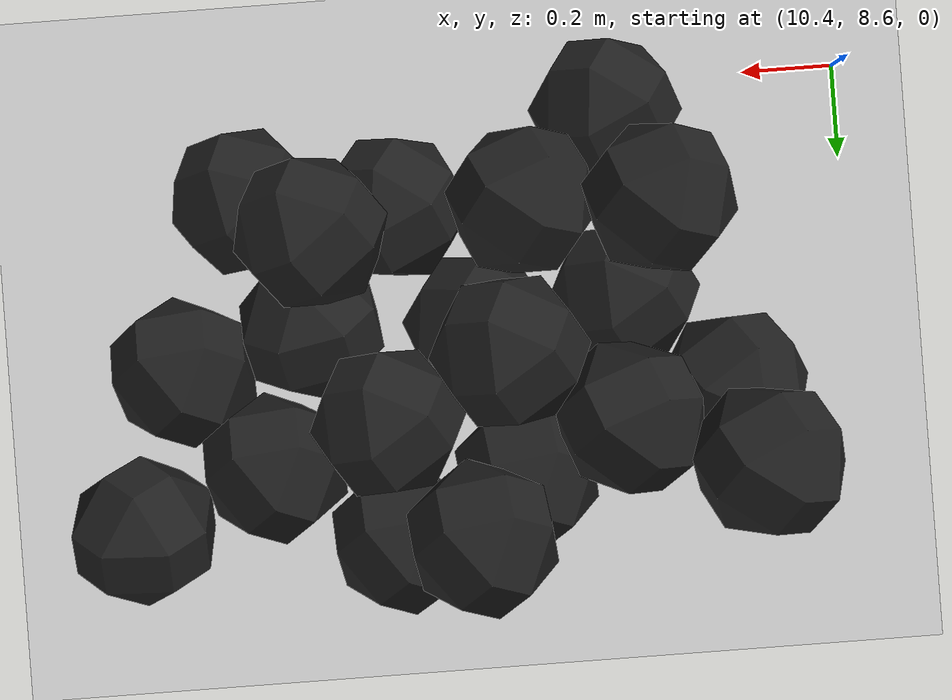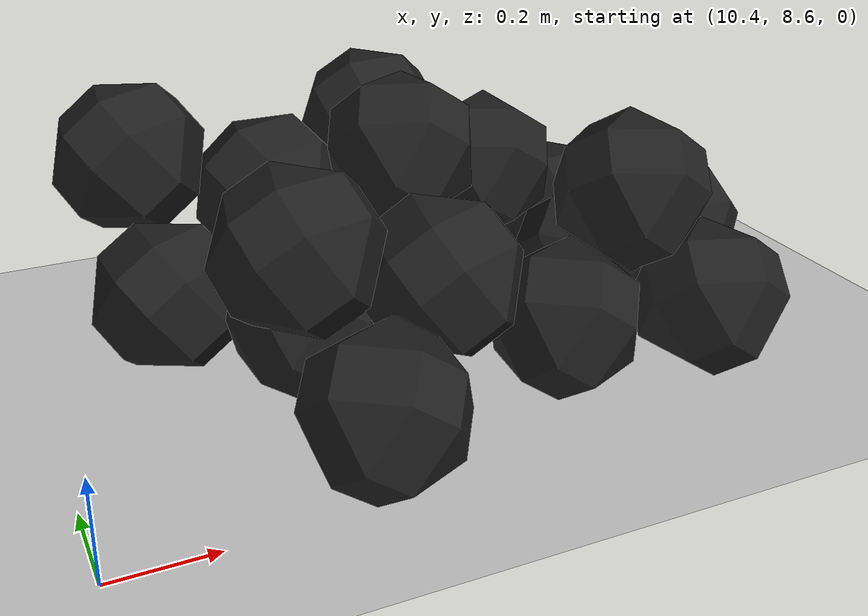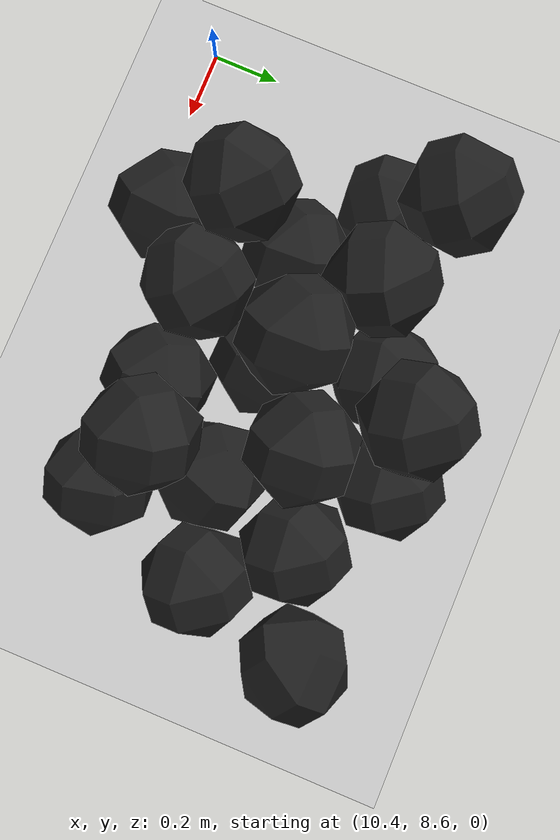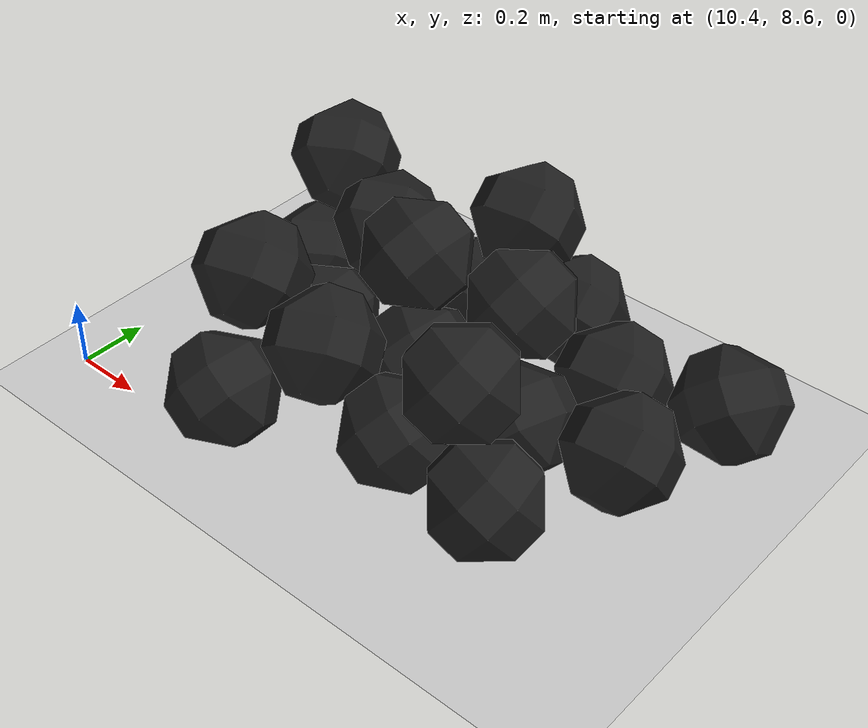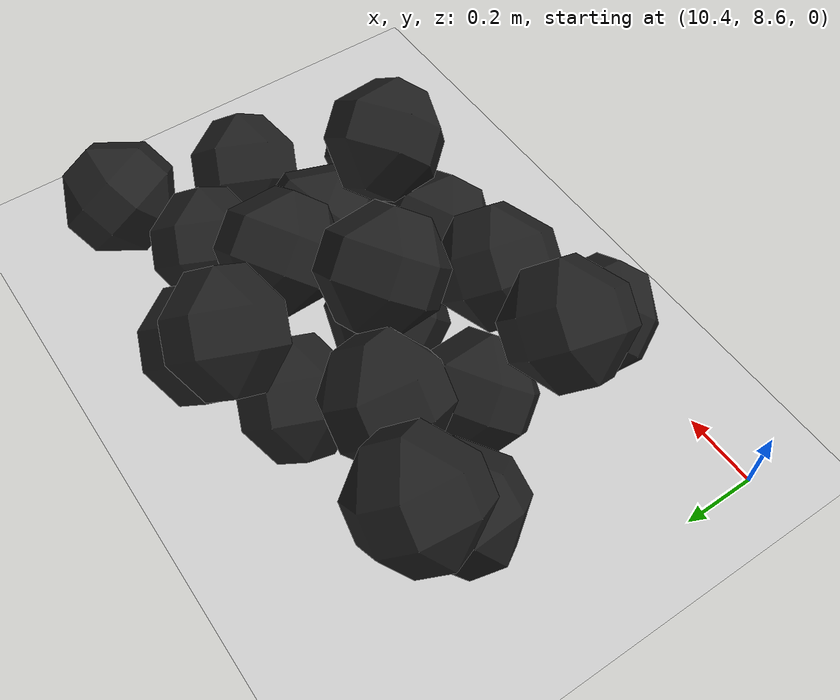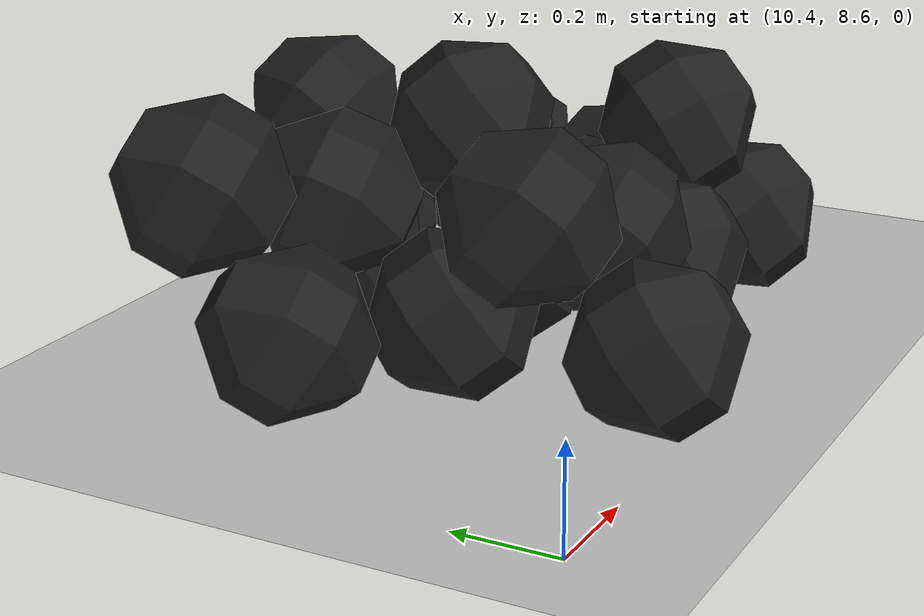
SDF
<sdf version="1.7">
 <world name="default">
  <model name="ground_plane">
   <static>1</static>
   <link name="link">
    <collision name="collision">
     <geometry><plane><normal>0 0 1</normal><size>100 100</size></plane></geometry>
     <surface><friction><ode><mu>100</mu><mu2>50</mu2></ode></friction></surface>
    </collision>
    <visual name="visual">
     <cast_shadows>0</cast_shadows>
     <geometry><plane><normal>0 0 1</normal><size>100 100</size></plane></geometry>
     <material>
      <script><uri>file://media/materials/scripts/gazebo.material</uri><name>Gazebo/Grey</name></script>
     </material>
    </visual>
   </link>
  </model>
  <model name="haoduomiantiaa_0">
   <link name="link_0">
    <inertial>
     <mass>0.2</mass>
     <inertia>
      <ixx>0.166667</ixx>
      <ixy>0</ixy>
      <ixz>0</ixz>
      <iyy>0.166667</iyy>
      <iyz>0</iyz>
      <izz>0.166667</izz>
     </inertia>
    </inertial>
    <visual name="visual">
     <geometry>
      <mesh>
       <uri>/home/lihaoyang/catkin_ws/src/pudong_gazebo/world/stl/haoduomianti.stl</uri>
       <scale>1 1 1</scale>
      </mesh>
     </geometry>
     <material>
      <lighting>1</lighting>
      <script><uri>file://media/materials/scripts/gazebo.material</uri><name>Gazebo/Black</name></script>
      <shader type="pixel"><normal_map>__default__</normal_map></shader>
      <ambient>0.3 0.3 0.3 1</ambient>
      <diffuse>0.7 0.7 0.7 1</diffuse>
      <specular>0.01 0.01 0.01 1</specular>
      <emissive>0 0 0 1</emissive>
     </material>
    </visual>
    <collision name="collision">
     <geometry>
      <mesh>
       <uri>/home/lihaoyang/catkin_ws/src/pudong_gazebo/world/stl/haoduomianti.stl</uri>
       <scale>1 1 1</scale>
      </mesh>
     </geometry>
     <surface>
      <friction>
       <ode><mu>1</mu><mu2>1</mu2><fdir1>0 0 0</fdir1><slip1>0</slip1><slip2>0</slip2></ode>
       <torsional>
        <coefficient>1</coefficient>
        <patch_radius>0</patch_radius>
        <surface_radius>0</surface_radius>
        <use_patch_radius>1</use_patch_radius>
        <ode><slip>0</slip></ode>
       </torsional>
      </friction>
      <bounce><restitution_coefficient>0</restitution_coefficient><threshold>1e+06</threshold></bounce>
      <contact>
       <collide_without_contact>0</collide_without_contact>
       <collide_without_contact_bitmask>1</collide_without_contact_bitmask>
       <collide_bitmask>1</collide_bitmask>
       <ode>
        <soft_cfm>0</soft_cfm>
        <soft_erp>0.2</soft_erp>
        <kp>1e+13</kp>
        <kd>1</kd>
        <max_vel>0.01</max_vel>
        <min_depth>0</min_depth>
       </ode>
       <bullet>
        <split_impulse>1</split_impulse>
        <split_impulse_penetration_threshold>-0.01</split_impulse_penetration_threshold>
        <soft_cfm>0</soft_cfm>
        <soft_erp>0.2</soft_erp>
        <kp>1e+13</kp>
        <kd>1</kd>
       </bullet>
      </contact>
     </surface>
    </collision>
   </link>
   <static>0</static>
   <pose>10.9075 9.06867 -0.115591 0.785364 -0.615479 -1.00385</pose>
  </model>
  <model name="haoduomiantiaa_2">
   <link name="link_0">
    <inertial>
     <mass>0.2</mass>
     <inertia>
      <ixx>0.166667</ixx>
      <ixy>0</ixy>
      <ixz>0</ixz>
      <iyy>0.166667</iyy>
      <iyz>0</iyz>
      <izz>0.166667</izz>
     </inertia>
    </inertial>
    <visual name="visual">
     <geometry>
      <mesh>
       <uri>/home/lihaoyang/catkin_ws/src/pudong_gazebo/world/stl/haoduomianti.stl</uri>
       <scale>1 1 1</scale>
      </mesh>
     </geometry>
     <material>
      <lighting>1</lighting>
      <script><uri>file://media/materials/scripts/gazebo.material</uri><name>Gazebo/Black</name></script>
      <shader type="pixel"><normal_map>__default__</normal_map></shader>
      <ambient>0.3 0.3 0.3 1</ambient>
      <diffuse>0.7 0.7 0.7 1</diffuse>
      <specular>0.01 0.01 0.01 1</specular>
      <emissive>0 0 0 1</emissive>
     </material>
    </visual>
    <collision name="collision">
     <geometry>
      <mesh>
       <uri>/home/lihaoyang/catkin_ws/src/pudong_gazebo/world/stl/haoduomianti.stl</uri>
       <scale>1 1 1</scale>
      </mesh>
     </geometry>
     <surface>
      <friction>
       <ode><mu>1</mu><mu2>1</mu2><fdir1>0 0 0</fdir1><slip1>0</slip1><slip2>0</slip2></ode>
       <torsional>
        <coefficient>1</coefficient>
        <patch_radius>0</patch_radius>
        <surface_radius>0</surface_radius>
        <use_patch_radius>1</use_patch_radius>
        <ode><slip>0</slip></ode>
       </torsional>
      </friction>
      <bounce><restitution_coefficient>0</restitution_coefficient><threshold>1e+06</threshold></bounce>
      <contact>
       <collide_without_contact>0</collide_without_contact>
       <collide_without_contact_bitmask>1</collide_without_contact_bitmask>
       <collide_bitmask>1</collide_bitmask>
       <ode>
        <soft_cfm>0</soft_cfm>
        <soft_erp>0.2</soft_erp>
        <kp>1e+13</kp>
        <kd>1</kd>
        <max_vel>0.01</max_vel>
        <min_depth>0</min_depth>
       </ode>
       <bullet>
        <split_impulse>1</split_impulse>
        <split_impulse_penetration_threshold>-0.01</split_impulse_penetration_threshold>
        <soft_cfm>0</soft_cfm>
        <soft_erp>0.2</soft_erp>
        <kp>1e+13</kp>
        <kd>1</kd>
       </bullet>
      </contact>
     </surface>
    </collision>
   </link>
   <static>0</static>
   <pose>11.5784 9.08907 -0.115479 0.785418 -0.615485 0.70657</pose>
  </model>
  <model name="haoduomiantiaa_5">
   <link name="link_0">
    <inertial>
     <mass>0.2</mass>
     <inertia>
      <ixx>0.166667</ixx>
      <ixy>0</ixy>
      <ixz>0</ixz>
      <iyy>0.166667</iyy>
      <iyz>0</iyz>
      <izz>0.166667</izz>
     </inertia>
    </inertial>
    <visual name="visual">
     <geometry>
      <mesh>
       <uri>/home/lihaoyang/catkin_ws/src/pudong_gazebo/world/stl/haoduomianti.stl</uri>
       <scale>1 1 1</scale>
      </mesh>
     </geometry>
     <material>
      <lighting>1</lighting>
      <script><uri>file://media/materials/scripts/gazebo.material</uri><name>Gazebo/Black</name></script>
      <shader type="pixel"><normal_map>__default__</normal_map></shader>
      <ambient>0.3 0.3 0.3 1</ambient>
      <diffuse>0.7 0.7 0.7 1</diffuse>
      <specular>0.01 0.01 0.01 1</specular>
      <emissive>0 0 0 1</emissive>
     </material>
    </visual>
    <collision name="collision">
     <geometry>
      <mesh>
       <uri>/home/lihaoyang/catkin_ws/src/pudong_gazebo/world/stl/haoduomianti.stl</uri>
       <scale>1 1 1</scale>
      </mesh>
     </geometry>
     <surface>
      <friction>
       <ode><mu>1</mu><mu2>1</mu2><fdir1>0 0 0</fdir1><slip1>0</slip1><slip2>0</slip2></ode>
       <torsional>
        <coefficient>1</coefficient>
        <patch_radius>0</patch_radius>
        <surface_radius>0</surface_radius>
        <use_patch_radius>1</use_patch_radius>
        <ode><slip>0</slip></ode>
       </torsional>
      </friction>
      <bounce><restitution_coefficient>0</restitution_coefficient><threshold>1e+06</threshold></bounce>
      <contact>
       <collide_without_contact>0</collide_without_contact>
       <collide_without_contact_bitmask>1</collide_without_contact_bitmask>
       <collide_bitmask>1</collide_bitmask>
       <ode>
        <soft_cfm>0</soft_cfm>
        <soft_erp>0.2</soft_erp>
        <kp>1e+13</kp>
        <kd>1</kd>
        <max_vel>0.01</max_vel>
        <min_depth>0</min_depth>
       </ode>
       <bullet>
        <split_impulse>1</split_impulse>
        <split_impulse_penetration_threshold>-0.01</split_impulse_penetration_threshold>
        <soft_cfm>0</soft_cfm>
        <soft_erp>0.2</soft_erp>
        <kp>1e+13</kp>
        <kd>1</kd>
       </bullet>
      </contact>
     </surface>
    </collision>
   </link>
   <static>0</static>
   <pose>11.5484 8.92081 0.116917 0.686953 -0.610599 -2.93693</pose>
  </model>
  <model name="haoduomiantiaa_7">
   <link name="link_0">
    <inertial>
     <mass>0.2</mass>
     <inertia>
      <ixx>0.166667</ixx>
      <ixy>0</ixy>
      <ixz>0</ixz>
      <iyy>0.166667</iyy>
      <iyz>0</iyz>
      <izz>0.166667</izz>
     </inertia>
    </inertial>
    <visual name="visual">
     <geometry>
      <mesh>
       <uri>/home/lihaoyang/catkin_ws/src/pudong_gazebo/world/stl/haoduomianti.stl</uri>
       <scale>1 1 1</scale>
      </mesh>
     </geometry>
     <material>
      <lighting>1</lighting>
      <script><uri>file://media/materials/scripts/gazebo.material</uri><name>Gazebo/Black</name></script>
      <shader type="pixel"><normal_map>__default__</normal_map></shader>
      <ambient>0.3 0.3 0.3 1</ambient>
      <diffuse>0.7 0.7 0.7 1</diffuse>
      <specular>0.01 0.01 0.01 1</specular>
      <emissive>0 0 0 1</emissive>
     </material>
    </visual>
    <collision name="collision">
     <geometry>
      <mesh>
       <uri>/home/lihaoyang/catkin_ws/src/pudong_gazebo/world/stl/haoduomianti.stl</uri>
       <scale>1 1 1</scale>
      </mesh>
     </geometry>
     <surface>
      <friction>
       <ode><mu>1</mu><mu2>1</mu2><fdir1>0 0 0</fdir1><slip1>0</slip1><slip2>0</slip2></ode>
       <torsional>
        <coefficient>1</coefficient>
        <patch_radius>0</patch_radius>
        <surface_radius>0</surface_radius>
        <use_patch_radius>1</use_patch_radius>
        <ode><slip>0</slip></ode>
       </torsional>
      </friction>
      <bounce><restitution_coefficient>0</restitution_coefficient><threshold>1e+06</threshold></bounce>
      <contact>
       <collide_without_contact>0</collide_without_contact>
       <collide_without_contact_bitmask>1</collide_without_contact_bitmask>
       <collide_bitmask>1</collide_bitmask>
       <ode>
        <soft_cfm>0</soft_cfm>
        <soft_erp>0.2</soft_erp>
        <kp>1e+13</kp>
        <kd>1</kd>
        <max_vel>0.01</max_vel>
        <min_depth>0</min_depth>
       </ode>
       <bullet>
        <split_impulse>1</split_impulse>
        <split_impulse_penetration_threshold>-0.01</split_impulse_penetration_threshold>
        <soft_cfm>0</soft_cfm>
        <soft_erp>0.2</soft_erp>
        <kp>1e+13</kp>
        <kd>1</kd>
       </bullet>
      </contact>
     </surface>
    </collision>
   </link>
   <static>0</static>
   <pose>10.9183 8.67319 -0.115516 0.785399 -0.615423 -1.12919</pose>
  </model>
  <model name="haoduomiantiaa_16">
   <link name="link_0">
    <inertial>
     <mass>0.2</mass>
     <inertia>
      <ixx>0.166667</ixx>
      <ixy>0</ixy>
      <ixz>0</ixz>
      <iyy>0.166667</iyy>
      <iyz>0</iyz>
      <izz>0.166667</izz>
     </inertia>
    </inertial>
    <visual name="visual">
     <geometry>
      <mesh>
       <uri>/home/lihaoyang/catkin_ws/src/pudong_gazebo/world/stl/haoduomianti.stl</uri>
       <scale>1 1 1</scale>
      </mesh>
     </geometry>
     <material>
      <lighting>1</lighting>
      <script><uri>file://media/materials/scripts/gazebo.material</uri><name>Gazebo/Black</name></script>
      <shader type="pixel"><normal_map>__default__</normal_map></shader>
      <ambient>0.3 0.3 0.3 1</ambient>
      <diffuse>0.7 0.7 0.7 1</diffuse>
      <specular>0.01 0.01 0.01 1</specular>
      <emissive>0 0 0 1</emissive>
     </material>
    </visual>
    <collision name="collision">
     <geometry>
      <mesh>
       <uri>/home/lihaoyang/catkin_ws/src/pudong_gazebo/world/stl/haoduomianti.stl</uri>
       <scale>1 1 1</scale>
      </mesh>
     </geometry>
     <surface>
      <friction>
       <ode><mu>1</mu><mu2>1</mu2><fdir1>0 0 0</fdir1><slip1>0</slip1><slip2>0</slip2></ode>
       <torsional>
        <coefficient>1</coefficient>
        <patch_radius>0</patch_radius>
        <surface_radius>0</surface_radius>
        <use_patch_radius>1</use_patch_radius>
        <ode><slip>0</slip></ode>
       </torsional>
      </friction>
      <bounce><restitution_coefficient>0</restitution_coefficient><threshold>1e+06</threshold></bounce>
      <contact>
       <collide_without_contact>0</collide_without_contact>
       <collide_without_contact_bitmask>1</collide_without_contact_bitmask>
       <collide_bitmask>1</collide_bitmask>
       <ode>
        <soft_cfm>0</soft_cfm>
        <soft_erp>0.2</soft_erp>
        <kp>1e+13</kp>
        <kd>1</kd>
        <max_vel>0.01</max_vel>
        <min_depth>0</min_depth>
       </ode>
       <bullet>
        <split_impulse>1</split_impulse>
        <split_impulse_penetration_threshold>-0.01</split_impulse_penetration_threshold>
        <soft_cfm>0</soft_cfm>
        <soft_erp>0.2</soft_erp>
        <kp>1e+13</kp>
        <kd>1</kd>
       </bullet>
      </contact>
     </surface>
    </collision>
   </link>
   <static>0</static>
   <pose>11.433 9.31202 0.061931 0.77388 -0.677487 1.11241</pose>
  </model>
  <model name="haoduomiantiaa_21">
   <link name="link_0">
    <inertial>
     <mass>0.2</mass>
     <inertia>
      <ixx>0.166667</ixx>
      <ixy>0</ixy>
      <ixz>0</ixz>
      <iyy>0.166667</iyy>
      <iyz>0</iyz>
      <izz>0.166667</izz>
     </inertia>
    </inertial>
    <visual name="visual">
     <geometry>
      <mesh>
       <uri>/home/lihaoyang/catkin_ws/src/pudong_gazebo/world/stl/haoduomianti.stl</uri>
       <scale>1 1 1</scale>
      </mesh>
     </geometry>
     <material>
      <lighting>1</lighting>
      <script><uri>file://media/materials/scripts/gazebo.material</uri><name>Gazebo/Black</name></script>
      <shader type="pixel"><normal_map>__default__</normal_map></shader>
      <ambient>0.3 0.3 0.3 1</ambient>
      <diffuse>0.7 0.7 0.7 1</diffuse>
      <specular>0.01 0.01 0.01 1</specular>
      <emissive>0 0 0 1</emissive>
     </material>
    </visual>
    <collision name="collision">
     <geometry>
      <mesh>
       <uri>/home/lihaoyang/catkin_ws/src/pudong_gazebo/world/stl/haoduomianti.stl</uri>
       <scale>1 1 1</scale>
      </mesh>
     </geometry>
     <surface>
      <friction>
       <ode><mu>1</mu><mu2>1</mu2><fdir1>0 0 0</fdir1><slip1>0</slip1><slip2>0</slip2></ode>
       <torsional>
        <coefficient>1</coefficient>
        <patch_radius>0</patch_radius>
        <surface_radius>0</surface_radius>
        <use_patch_radius>1</use_patch_radius>
        <ode><slip>0</slip></ode>
       </torsional>
      </friction>
      <bounce><restitution_coefficient>0</restitution_coefficient><threshold>1e+06</threshold></bounce>
      <contact>
       <collide_without_contact>0</collide_without_contact>
       <collide_without_contact_bitmask>1</collide_without_contact_bitmask>
       <collide_bitmask>1</collide_bitmask>
       <ode>
        <soft_cfm>0</soft_cfm>
        <soft_erp>0.2</soft_erp>
        <kp>1e+13</kp>
        <kd>1</kd>
        <max_vel>0.01</max_vel>
        <min_depth>0</min_depth>
       </ode>
       <bullet>
        <split_impulse>1</split_impulse>
        <split_impulse_penetration_threshold>-0.01</split_impulse_penetration_threshold>
        <soft_cfm>0</soft_cfm>
        <soft_erp>0.2</soft_erp>
        <kp>1e+13</kp>
        <kd>1</kd>
       </bullet>
      </contact>
     </surface>
    </collision>
   </link>
   <static>0</static>
   <pose>10.9536 9.27498 0.075313 1.05219 -0.670837 -2.44192</pose>
  </model>
  <model name="haoduomiantiaa_22">
   <link name="link_0">
    <inertial>
     <mass>0.2</mass>
     <inertia>
      <ixx>0.166667</ixx>
      <ixy>0</ixy>
      <ixz>0</ixz>
      <iyy>0.166667</iyy>
      <iyz>0</iyz>
      <izz>0.166667</izz>
     </inertia>
    </inertial>
    <visual name="visual">
     <geometry>
      <mesh>
       <uri>/home/lihaoyang/catkin_ws/src/pudong_gazebo/world/stl/haoduomianti.stl</uri>
       <scale>1 1 1</scale>
      </mesh>
     </geometry>
     <material>
      <lighting>1</lighting>
      <script><uri>file://media/materials/scripts/gazebo.material</uri><name>Gazebo/Black</name></script>
      <shader type="pixel"><normal_map>__default__</normal_map></shader>
      <ambient>0.3 0.3 0.3 1</ambient>
      <diffuse>0.7 0.7 0.7 1</diffuse>
      <specular>0.01 0.01 0.01 1</specular>
      <emissive>0 0 0 1</emissive>
     </material>
    </visual>
    <collision name="collision">
     <geometry>
      <mesh>
       <uri>/home/lihaoyang/catkin_ws/src/pudong_gazebo/world/stl/haoduomianti.stl</uri>
       <scale>1 1 1</scale>
      </mesh>
     </geometry>
     <surface>
      <friction>
       <ode><mu>1</mu><mu2>1</mu2><fdir1>0 0 0</fdir1><slip1>0</slip1><slip2>0</slip2></ode>
       <torsional>
        <coefficient>1</coefficient>
        <patch_radius>0</patch_radius>
        <surface_radius>0</surface_radius>
        <use_patch_radius>1</use_patch_radius>
        <ode><slip>0</slip></ode>
       </torsional>
      </friction>
      <bounce><restitution_coefficient>0</restitution_coefficient><threshold>1e+06</threshold></bounce>
      <contact>
       <collide_without_contact>0</collide_without_contact>
       <collide_without_contact_bitmask>1</collide_without_contact_bitmask>
       <collide_bitmask>1</collide_bitmask>
       <ode>
        <soft_cfm>0</soft_cfm>
        <soft_erp>0.2</soft_erp>
        <kp>1e+13</kp>
        <kd>1</kd>
        <max_vel>0.01</max_vel>
        <min_depth>0</min_depth>
       </ode>
       <bullet>
        <split_impulse>1</split_impulse>
        <split_impulse_penetration_threshold>-0.01</split_impulse_penetration_threshold>
        <soft_cfm>0</soft_cfm>
        <soft_erp>0.2</soft_erp>
        <kp>1e+13</kp>
        <kd>1</kd>
       </bullet>
      </contact>
     </surface>
    </collision>
   </link>
   <static>0</static>
   <pose>11.7031 8.81136 -0.115456 0.785403 -0.614665 -0.840751</pose>
  </model>
  <model name="haoduomiantiaa_27">
   <link name="link_0">
    <inertial>
     <mass>0.2</mass>
     <inertia>
      <ixx>0.166667</ixx>
      <ixy>0</ixy>
      <ixz>0</ixz>
      <iyy>0.166667</iyy>
      <iyz>0</iyz>
      <izz>0.166667</izz>
     </inertia>
    </inertial>
    <visual name="visual">
     <geometry>
      <mesh>
       <uri>/home/lihaoyang/catkin_ws/src/pudong_gazebo/world/stl/haoduomianti.stl</uri>
       <scale>1 1 1</scale>
      </mesh>
     </geometry>
     <material>
      <lighting>1</lighting>
      <script><uri>file://media/materials/scripts/gazebo.material</uri><name>Gazebo/Black</name></script>
      <shader type="pixel"><normal_map>__default__</normal_map></shader>
      <ambient>0.3 0.3 0.3 1</ambient>
      <diffuse>0.7 0.7 0.7 1</diffuse>
      <specular>0.01 0.01 0.01 1</specular>
      <emissive>0 0 0 1</emissive>
     </material>
    </visual>
    <collision name="collision">
     <geometry>
      <mesh>
       <uri>/home/lihaoyang/catkin_ws/src/pudong_gazebo/world/stl/haoduomianti.stl</uri>
       <scale>1 1 1</scale>
      </mesh>
     </geometry>
     <surface>
      <friction>
       <ode><mu>1</mu><mu2>1</mu2><fdir1>0 0 0</fdir1><slip1>0</slip1><slip2>0</slip2></ode>
       <torsional>
        <coefficient>1</coefficient>
        <patch_radius>0</patch_radius>
        <surface_radius>0</surface_radius>
        <use_patch_radius>1</use_patch_radius>
        <ode><slip>0</slip></ode>
       </torsional>
      </friction>
      <bounce><restitution_coefficient>0</restitution_coefficient><threshold>1e+06</threshold></bounce>
      <contact>
       <collide_without_contact>0</collide_without_contact>
       <collide_without_contact_bitmask>1</collide_without_contact_bitmask>
       <collide_bitmask>1</collide_bitmask>
       <ode>
        <soft_cfm>0</soft_cfm>
        <soft_erp>0.2</soft_erp>
        <kp>1e+13</kp>
        <kd>1</kd>
        <max_vel>0.01</max_vel>
        <min_depth>0</min_depth>
       </ode>
       <bullet>
        <split_impulse>1</split_impulse>
        <split_impulse_penetration_threshold>-0.01</split_impulse_penetration_threshold>
        <soft_cfm>0</soft_cfm>
        <soft_erp>0.2</soft_erp>
        <kp>1e+13</kp>
        <kd>1</kd>
       </bullet>
      </contact>
     </surface>
    </collision>
   </link>
   <static>0</static>
   <pose>11.677 9.3855 -0.115492 0.785407 -0.615434 -0.427376</pose>
  </model>
  <model name="haoduomiantiaa_32">
   <link name="link_0">
    <inertial>
     <mass>0.2</mass>
     <inertia>
      <ixx>0.166667</ixx>
      <ixy>0</ixy>
      <ixz>0</ixz>
      <iyy>0.166667</iyy>
      <iyz>0</iyz>
      <izz>0.166667</izz>
     </inertia>
    </inertial>
    <visual name="visual">
     <geometry>
      <mesh>
       <uri>/home/lihaoyang/catkin_ws/src/pudong_gazebo/world/stl/haoduomianti.stl</uri>
       <scale>1 1 1</scale>
      </mesh>
     </geometry>
     <material>
      <lighting>1</lighting>
      <script><uri>file://media/materials/scripts/gazebo.material</uri><name>Gazebo/Black</name></script>
      <shader type="pixel"><normal_map>__default__</normal_map></shader>
      <ambient>0.3 0.3 0.3 1</ambient>
      <diffuse>0.7 0.7 0.7 1</diffuse>
      <specular>0.01 0.01 0.01 1</specular>
      <emissive>0 0 0 1</emissive>
     </material>
    </visual>
    <collision name="collision">
     <geometry>
      <mesh>
       <uri>/home/lihaoyang/catkin_ws/src/pudong_gazebo/world/stl/haoduomianti.stl</uri>
       <scale>1 1 1</scale>
      </mesh>
     </geometry>
     <surface>
      <friction>
       <ode><mu>1</mu><mu2>1</mu2><fdir1>0 0 0</fdir1><slip1>0</slip1><slip2>0</slip2></ode>
       <torsional>
        <coefficient>1</coefficient>
        <patch_radius>0</patch_radius>
        <surface_radius>0</surface_radius>
        <use_patch_radius>1</use_patch_radius>
        <ode><slip>0</slip></ode>
       </torsional>
      </friction>
      <bounce><restitution_coefficient>0</restitution_coefficient><threshold>1e+06</threshold></bounce>
      <contact>
       <collide_without_contact>0</collide_without_contact>
       <collide_without_contact_bitmask>1</collide_without_contact_bitmask>
       <collide_bitmask>1</collide_bitmask>
       <ode>
        <soft_cfm>0</soft_cfm>
        <soft_erp>0.2</soft_erp>
        <kp>1e+13</kp>
        <kd>1</kd>
        <max_vel>0.01</max_vel>
        <min_depth>0</min_depth>
       </ode>
       <bullet>
        <split_impulse>1</split_impulse>
        <split_impulse_penetration_threshold>-0.01</split_impulse_penetration_threshold>
        <soft_cfm>0</soft_cfm>
        <soft_erp>0.2</soft_erp>
        <kp>1e+13</kp>
        <kd>1</kd>
       </bullet>
      </contact>
     </surface>
    </collision>
   </link>
   <static>0</static>
   <pose>11.2222 9.11322 -0.115514 0.785411 -0.61548 -1.15952</pose>
  </model>
  <model name="haoduomiantiaa_36">
   <link name="link_0">
    <inertial>
     <mass>0.2</mass>
     <inertia>
      <ixx>0.166667</ixx>
      <ixy>0</ixy>
      <ixz>0</ixz>
      <iyy>0.166667</iyy>
      <iyz>0</iyz>
      <izz>0.166667</izz>
     </inertia>
    </inertial>
    <visual name="visual">
     <geometry>
      <mesh>
       <uri>/home/lihaoyang/catkin_ws/src/pudong_gazebo/world/stl/haoduomianti.stl</uri>
       <scale>1 1 1</scale>
      </mesh>
     </geometry>
     <material>
      <lighting>1</lighting>
      <script><uri>file://media/materials/scripts/gazebo.material</uri><name>Gazebo/Black</name></script>
      <shader type="pixel"><normal_map>__default__</normal_map></shader>
      <ambient>0.3 0.3 0.3 1</ambient>
      <diffuse>0.7 0.7 0.7 1</diffuse>
      <specular>0.01 0.01 0.01 1</specular>
      <emissive>0 0 0 1</emissive>
     </material>
    </visual>
    <collision name="collision">
     <geometry>
      <mesh>
       <uri>/home/lihaoyang/catkin_ws/src/pudong_gazebo/world/stl/haoduomianti.stl</uri>
       <scale>1 1 1</scale>
      </mesh>
     </geometry>
     <surface>
      <friction>
       <ode><mu>1</mu><mu2>1</mu2><fdir1>0 0 0</fdir1><slip1>0</slip1><slip2>0</slip2></ode>
       <torsional>
        <coefficient>1</coefficient>
        <patch_radius>0</patch_radius>
        <surface_radius>0</surface_radius>
        <use_patch_radius>1</use_patch_radius>
        <ode><slip>0</slip></ode>
       </torsional>
      </friction>
      <bounce><restitution_coefficient>0</restitution_coefficient><threshold>1e+06</threshold></bounce>
      <contact>
       <collide_without_contact>0</collide_without_contact>
       <collide_without_contact_bitmask>1</collide_without_contact_bitmask>
       <collide_bitmask>1</collide_bitmask>
       <ode>
        <soft_cfm>0</soft_cfm>
        <soft_erp>0.2</soft_erp>
        <kp>1e+13</kp>
        <kd>1</kd>
        <max_vel>0.01</max_vel>
        <min_depth>0</min_depth>
       </ode>
       <bullet>
        <split_impulse>1</split_impulse>
        <split_impulse_penetration_threshold>-0.01</split_impulse_penetration_threshold>
        <soft_cfm>0</soft_cfm>
        <soft_erp>0.2</soft_erp>
        <kp>1e+13</kp>
        <kd>1</kd>
       </bullet>
      </contact>
     </surface>
    </collision>
   </link>
   <static>0</static>
   <pose>11.2457 9.54406 0.126239 0.786681 -0.616521 -2.48259</pose>
  </model>
  <model name="haoduomiantiaa_44">
   <link name="link_0">
    <inertial>
     <mass>0.2</mass>
     <inertia>
      <ixx>0.166667</ixx>
      <ixy>0</ixy>
      <ixz>0</ixz>
      <iyy>0.166667</iyy>
      <iyz>0</iyz>
      <izz>0.166667</izz>
     </inertia>
    </inertial>
    <visual name="visual">
     <geometry>
      <mesh>
       <uri>/home/lihaoyang/catkin_ws/src/pudong_gazebo/world/stl/haoduomianti.stl</uri>
       <scale>1 1 1</scale>
      </mesh>
     </geometry>
     <material>
      <lighting>1</lighting>
      <script><uri>file://media/materials/scripts/gazebo.material</uri><name>Gazebo/Black</name></script>
      <shader type="pixel"><normal_map>__default__</normal_map></shader>
      <ambient>0.3 0.3 0.3 1</ambient>
      <diffuse>0.7 0.7 0.7 1</diffuse>
      <specular>0.01 0.01 0.01 1</specular>
      <emissive>0 0 0 1</emissive>
     </material>
    </visual>
    <collision name="collision">
     <geometry>
      <mesh>
       <uri>/home/lihaoyang/catkin_ws/src/pudong_gazebo/world/stl/haoduomianti.stl</uri>
       <scale>1 1 1</scale>
      </mesh>
     </geometry>
     <surface>
      <friction>
       <ode><mu>1</mu><mu2>1</mu2><fdir1>0 0 0</fdir1><slip1>0</slip1><slip2>0</slip2></ode>
       <torsional>
        <coefficient>1</coefficient>
        <patch_radius>0</patch_radius>
        <surface_radius>0</surface_radius>
        <use_patch_radius>1</use_patch_radius>
        <ode><slip>0</slip></ode>
       </torsional>
      </friction>
      <bounce><restitution_coefficient>0</restitution_coefficient><threshold>1e+06</threshold></bounce>
      <contact>
       <collide_without_contact>0</collide_without_contact>
       <collide_without_contact_bitmask>1</collide_without_contact_bitmask>
       <collide_bitmask>1</collide_bitmask>
       <ode>
        <soft_cfm>0</soft_cfm>
        <soft_erp>0.2</soft_erp>
        <kp>1e+13</kp>
        <kd>1</kd>
        <max_vel>0.01</max_vel>
        <min_depth>0</min_depth>
       </ode>
       <bullet>
        <split_impulse>1</split_impulse>
        <split_impulse_penetration_threshold>-0.01</split_impulse_penetration_threshold>
        <soft_cfm>0</soft_cfm>
        <soft_erp>0.2</soft_erp>
        <kp>1e+13</kp>
        <kd>1</kd>
       </bullet>
      </contact>
     </surface>
    </collision>
   </link>
   <static>0</static>
   <pose>11.9665 9.50039 -0.115641 0.785414 -0.615508 2.57709</pose>
  </model>
  <model name="haoduomiantiaa_47">
   <link name="link_0">
    <inertial>
     <mass>0.2</mass>
     <inertia>
      <ixx>0.166667</ixx>
      <ixy>0</ixy>
      <ixz>0</ixz>
      <iyy>0.166667</iyy>
      <iyz>0</iyz>
      <izz>0.166667</izz>
     </inertia>
    </inertial>
    <visual name="visual">
     <geometry>
      <mesh>
       <uri>/home/lihaoyang/catkin_ws/src/pudong_gazebo/world/stl/haoduomianti.stl</uri>
       <scale>1 1 1</scale>
      </mesh>
     </geometry>
     <material>
      <lighting>1</lighting>
      <script><uri>file://media/materials/scripts/gazebo.material</uri><name>Gazebo/Black</name></script>
      <shader type="pixel"><normal_map>__default__</normal_map></shader>
      <ambient>0.3 0.3 0.3 1</ambient>
      <diffuse>0.7 0.7 0.7 1</diffuse>
      <specular>0.01 0.01 0.01 1</specular>
      <emissive>0 0 0 1</emissive>
     </material>
    </visual>
    <collision name="collision">
     <geometry>
      <mesh>
       <uri>/home/lihaoyang/catkin_ws/src/pudong_gazebo/world/stl/haoduomianti.stl</uri>
       <scale>1 1 1</scale>
      </mesh>
     </geometry>
     <surface>
      <friction>
       <ode><mu>1</mu><mu2>1</mu2><fdir1>0 0 0</fdir1><slip1>0</slip1><slip2>0</slip2></ode>
       <torsional>
        <coefficient>1</coefficient>
        <patch_radius>0</patch_radius>
        <surface_radius>0</surface_radius>
        <use_patch_radius>1</use_patch_radius>
        <ode><slip>0</slip></ode>
       </torsional>
      </friction>
      <bounce><restitution_coefficient>0</restitution_coefficient><threshold>1e+06</threshold></bounce>
      <contact>
       <collide_without_contact>0</collide_without_contact>
       <collide_without_contact_bitmask>1</collide_without_contact_bitmask>
       <collide_bitmask>1</collide_bitmask>
       <ode>
        <soft_cfm>0</soft_cfm>
        <soft_erp>0.2</soft_erp>
        <kp>1e+13</kp>
        <kd>1</kd>
        <max_vel>0.01</max_vel>
        <min_depth>0</min_depth>
       </ode>
       <bullet>
        <split_impulse>1</split_impulse>
        <split_impulse_penetration_threshold>-0.01</split_impulse_penetration_threshold>
        <soft_cfm>0</soft_cfm>
        <soft_erp>0.2</soft_erp>
        <kp>1e+13</kp>
        <kd>1</kd>
       </bullet>
      </contact>
     </surface>
    </collision>
   </link>
   <static>0</static>
   <pose>11.4128 9.55522 -0.115461 0.785403 -0.615463 -0.421284</pose>
  </model>
  <model name="haoduomiantiaa_51">
   <link name="link_0">
    <inertial>
     <mass>0.2</mass>
     <inertia>
      <ixx>0.166667</ixx>
      <ixy>0</ixy>
      <ixz>0</ixz>
      <iyy>0.166667</iyy>
      <iyz>0</iyz>
      <izz>0.166667</izz>
     </inertia>
    </inertial>
    <visual name="visual">
     <geometry>
      <mesh>
       <uri>/home/lihaoyang/catkin_ws/src/pudong_gazebo/world/stl/haoduomianti.stl</uri>
       <scale>1 1 1</scale>
      </mesh>
     </geometry>
     <material>
      <lighting>1</lighting>
      <script><uri>file://media/materials/scripts/gazebo.material</uri><name>Gazebo/Black</name></script>
      <shader type="pixel"><normal_map>__default__</normal_map></shader>
      <ambient>0.3 0.3 0.3 1</ambient>
      <diffuse>0.7 0.7 0.7 1</diffuse>
      <specular>0.01 0.01 0.01 1</specular>
      <emissive>0 0 0 1</emissive>
     </material>
    </visual>
    <collision name="collision">
     <geometry>
      <mesh>
       <uri>/home/lihaoyang/catkin_ws/src/pudong_gazebo/world/stl/haoduomianti.stl</uri>
       <scale>1 1 1</scale>
      </mesh>
     </geometry>
     <surface>
      <friction>
       <ode><mu>1</mu><mu2>1</mu2><fdir1>0 0 0</fdir1><slip1>0</slip1><slip2>0</slip2></ode>
       <torsional>
        <coefficient>1</coefficient>
        <patch_radius>0</patch_radius>
        <surface_radius>0</surface_radius>
        <use_patch_radius>1</use_patch_radius>
        <ode><slip>0</slip></ode>
       </torsional>
      </friction>
      <bounce><restitution_coefficient>0</restitution_coefficient><threshold>1e+06</threshold></bounce>
      <contact>
       <collide_without_contact>0</collide_without_contact>
       <collide_without_contact_bitmask>1</collide_without_contact_bitmask>
       <collide_bitmask>1</collide_bitmask>
       <ode>
        <soft_cfm>0</soft_cfm>
        <soft_erp>0.2</soft_erp>
        <kp>1e+13</kp>
        <kd>1</kd>
        <max_vel>0.01</max_vel>
        <min_depth>0</min_depth>
       </ode>
       <bullet>
        <split_impulse>1</split_impulse>
        <split_impulse_penetration_threshold>-0.01</split_impulse_penetration_threshold>
        <soft_cfm>0</soft_cfm>
        <soft_erp>0.2</soft_erp>
        <kp>1e+13</kp>
        <kd>1</kd>
       </bullet>
      </contact>
     </surface>
    </collision>
   </link>
   <static>0</static>
   <pose>11.8578 9.16657 -0.115476 0.785425 -0.615484 1.67197</pose>
  </model>
  <model name="haoduomiantiaa_59">
   <link name="link_0">
    <inertial>
     <mass>0.2</mass>
     <inertia>
      <ixx>0.166667</ixx>
      <ixy>0</ixy>
      <ixz>0</ixz>
      <iyy>0.166667</iyy>
      <iyz>0</iyz>
      <izz>0.166667</izz>
     </inertia>
    </inertial>
    <visual name="visual">
     <geometry>
      <mesh>
       <uri>/home/lihaoyang/catkin_ws/src/pudong_gazebo/world/stl/haoduomianti.stl</uri>
       <scale>1 1 1</scale>
      </mesh>
     </geometry>
     <material>
      <lighting>1</lighting>
      <script><uri>file://media/materials/scripts/gazebo.material</uri><name>Gazebo/Black</name></script>
      <shader type="pixel"><normal_map>__default__</normal_map></shader>
      <ambient>0.3 0.3 0.3 1</ambient>
      <diffuse>0.7 0.7 0.7 1</diffuse>
      <specular>0.01 0.01 0.01 1</specular>
      <emissive>0 0 0 1</emissive>
     </material>
    </visual>
    <collision name="collision">
     <geometry>
      <mesh>
       <uri>/home/lihaoyang/catkin_ws/src/pudong_gazebo/world/stl/haoduomianti.stl</uri>
       <scale>1 1 1</scale>
      </mesh>
     </geometry>
     <surface>
      <friction>
       <ode><mu>1</mu><mu2>1</mu2><fdir1>0 0 0</fdir1><slip1>0</slip1><slip2>0</slip2></ode>
       <torsional>
        <coefficient>1</coefficient>
        <patch_radius>0</patch_radius>
        <surface_radius>0</surface_radius>
        <use_patch_radius>1</use_patch_radius>
        <ode><slip>0</slip></ode>
       </torsional>
      </friction>
      <bounce><restitution_coefficient>0</restitution_coefficient><threshold>1e+06</threshold></bounce>
      <contact>
       <collide_without_contact>0</collide_without_contact>
       <collide_without_contact_bitmask>1</collide_without_contact_bitmask>
       <collide_bitmask>1</collide_bitmask>
       <ode>
        <soft_cfm>0</soft_cfm>
        <soft_erp>0.2</soft_erp>
        <kp>1e+13</kp>
        <kd>1</kd>
        <max_vel>0.01</max_vel>
        <min_depth>0</min_depth>
       </ode>
       <bullet>
        <split_impulse>1</split_impulse>
        <split_impulse_penetration_threshold>-0.01</split_impulse_penetration_threshold>
        <soft_cfm>0</soft_cfm>
        <soft_erp>0.2</soft_erp>
        <kp>1e+13</kp>
        <kd>1</kd>
       </bullet>
      </contact>
     </surface>
    </collision>
   </link>
   <static>0</static>
   <pose>11.1221 8.88448 0.023981 0.896828 -0.635901 -0.217229</pose>
  </model>
  <model name="haoduomiantiaa_71">
   <link name="link_0">
    <inertial>
     <mass>0.2</mass>
     <inertia>
      <ixx>0.166667</ixx>
      <ixy>0</ixy>
      <ixz>0</ixz>
      <iyy>0.166667</iyy>
      <iyz>0</iyz>
      <izz>0.166667</izz>
     </inertia>
    </inertial>
    <visual name="visual">
     <geometry>
      <mesh>
       <uri>/home/lihaoyang/catkin_ws/src/pudong_gazebo/world/stl/haoduomianti.stl</uri>
       <scale>1 1 1</scale>
      </mesh>
     </geometry>
     <material>
      <lighting>1</lighting>
      <script><uri>file://media/materials/scripts/gazebo.material</uri><name>Gazebo/Black</name></script>
      <shader type="pixel"><normal_map>__default__</normal_map></shader>
      <ambient>0.3 0.3 0.3 1</ambient>
      <diffuse>0.7 0.7 0.7 1</diffuse>
      <specular>0.01 0.01 0.01 1</specular>
      <emissive>0 0 0 1</emissive>
     </material>
    </visual>
    <collision name="collision">
     <geometry>
      <mesh>
       <uri>/home/lihaoyang/catkin_ws/src/pudong_gazebo/world/stl/haoduomianti.stl</uri>
       <scale>1 1 1</scale>
      </mesh>
     </geometry>
     <surface>
      <friction>
       <ode><mu>1</mu><mu2>1</mu2><fdir1>0 0 0</fdir1><slip1>0</slip1><slip2>0</slip2></ode>
       <torsional>
        <coefficient>1</coefficient>
        <patch_radius>0</patch_radius>
        <surface_radius>0</surface_radius>
        <use_patch_radius>1</use_patch_radius>
        <ode><slip>0</slip></ode>
       </torsional>
      </friction>
      <bounce><restitution_coefficient>0</restitution_coefficient><threshold>1e+06</threshold></bounce>
      <contact>
       <collide_without_contact>0</collide_without_contact>
       <collide_without_contact_bitmask>1</collide_without_contact_bitmask>
       <collide_bitmask>1</collide_bitmask>
       <ode>
        <soft_cfm>0</soft_cfm>
        <soft_erp>0.2</soft_erp>
        <kp>1e+13</kp>
        <kd>1</kd>
        <max_vel>0.01</max_vel>
        <min_depth>0</min_depth>
       </ode>
       <bullet>
        <split_impulse>1</split_impulse>
        <split_impulse_penetration_threshold>-0.01</split_impulse_penetration_threshold>
        <soft_cfm>0</soft_cfm>
        <soft_erp>0.2</soft_erp>
        <kp>1e+13</kp>
        <kd>1</kd>
       </bullet>
      </contact>
     </surface>
    </collision>
   </link>
   <static>0</static>
   <pose>10.6778 9.42044 0.146049 0.756202 -0.696171 -0.078661</pose>
  </model>
  <model name="haoduomiantiaa_91">
   <link name="link_0">
    <inertial>
     <mass>0.2</mass>
     <inertia>
      <ixx>0.166667</ixx>
      <ixy>0</ixy>
      <ixz>0</ixz>
      <iyy>0.166667</iyy>
      <iyz>0</iyz>
      <izz>0.166667</izz>
     </inertia>
    </inertial>
    <visual name="visual">
     <geometry>
      <mesh>
       <uri>/home/lihaoyang/catkin_ws/src/pudong_gazebo/world/stl/haoduomianti.stl</uri>
       <scale>1 1 1</scale>
      </mesh>
     </geometry>
     <material>
      <lighting>1</lighting>
      <script><uri>file://media/materials/scripts/gazebo.material</uri><name>Gazebo/Black</name></script>
      <shader type="pixel"><normal_map>__default__</normal_map></shader>
      <ambient>0.3 0.3 0.3 1</ambient>
      <diffuse>0.7 0.7 0.7 1</diffuse>
      <specular>0.01 0.01 0.01 1</specular>
      <emissive>0 0 0 1</emissive>
     </material>
    </visual>
    <collision name="collision">
     <geometry>
      <mesh>
       <uri>/home/lihaoyang/catkin_ws/src/pudong_gazebo/world/stl/haoduomianti.stl</uri>
       <scale>1 1 1</scale>
      </mesh>
     </geometry>
     <surface>
      <friction>
       <ode><mu>1</mu><mu2>1</mu2><fdir1>0 0 0</fdir1><slip1>0</slip1><slip2>0</slip2></ode>
       <torsional>
        <coefficient>1</coefficient>
        <patch_radius>0</patch_radius>
        <surface_radius>0</surface_radius>
        <use_patch_radius>1</use_patch_radius>
        <ode><slip>0</slip></ode>
       </torsional>
      </friction>
      <bounce><restitution_coefficient>0</restitution_coefficient><threshold>1e+06</threshold></bounce>
      <contact>
       <collide_without_contact>0</collide_without_contact>
       <collide_without_contact_bitmask>1</collide_without_contact_bitmask>
       <collide_bitmask>1</collide_bitmask>
       <ode>
        <soft_cfm>0</soft_cfm>
        <soft_erp>0.2</soft_erp>
        <kp>1e+13</kp>
        <kd>1</kd>
        <max_vel>0.01</max_vel>
        <min_depth>0</min_depth>
       </ode>
       <bullet>
        <split_impulse>1</split_impulse>
        <split_impulse_penetration_threshold>-0.01</split_impulse_penetration_threshold>
        <soft_cfm>0</soft_cfm>
        <soft_erp>0.2</soft_erp>
        <kp>1e+13</kp>
        <kd>1</kd>
       </bullet>
      </contact>
     </surface>
    </collision>
   </link>
   <static>0</static>
   <pose>11.1407 9.43831 -0.115499 0.7855 -0.615454 1.70837</pose>
  </model>
  <model name="haoduomiantiaa_99">
   <link name="link_0">
    <inertial>
     <mass>0.2</mass>
     <inertia>
      <ixx>0.166667</ixx>
      <ixy>0</ixy>
      <ixz>0</ixz>
      <iyy>0.166667</iyy>
      <iyz>0</iyz>
      <izz>0.166667</izz>
     </inertia>
    </inertial>
    <visual name="visual">
     <geometry>
      <mesh>
       <uri>/home/lihaoyang/catkin_ws/src/pudong_gazebo/world/stl/haoduomianti.stl</uri>
       <scale>1 1 1</scale>
      </mesh>
     </geometry>
     <material>
      <lighting>1</lighting>
      <script><uri>file://media/materials/scripts/gazebo.material</uri><name>Gazebo/Black</name></script>
      <shader type="pixel"><normal_map>__default__</normal_map></shader>
      <ambient>0.3 0.3 0.3 1</ambient>
      <diffuse>0.7 0.7 0.7 1</diffuse>
      <specular>0.01 0.01 0.01 1</specular>
      <emissive>0 0 0 1</emissive>
     </material>
    </visual>
    <collision name="collision">
     <geometry>
      <mesh>
       <uri>/home/lihaoyang/catkin_ws/src/pudong_gazebo/world/stl/haoduomianti.stl</uri>
       <scale>1 1 1</scale>
      </mesh>
     </geometry>
     <surface>
      <friction>
       <ode><mu>1</mu><mu2>1</mu2><fdir1>0 0 0</fdir1><slip1>0</slip1><slip2>0</slip2></ode>
       <torsional>
        <coefficient>1</coefficient>
        <patch_radius>0</patch_radius>
        <surface_radius>0</surface_radius>
        <use_patch_radius>1</use_patch_radius>
        <ode><slip>0</slip></ode>
       </torsional>
      </friction>
      <bounce><restitution_coefficient>0</restitution_coefficient><threshold>1e+06</threshold></bounce>
      <contact>
       <collide_without_contact>0</collide_without_contact>
       <collide_without_contact_bitmask>1</collide_without_contact_bitmask>
       <collide_bitmask>1</collide_bitmask>
       <ode>
        <soft_cfm>0</soft_cfm>
        <soft_erp>0.2</soft_erp>
        <kp>1e+13</kp>
        <kd>1</kd>
        <max_vel>0.01</max_vel>
        <min_depth>0</min_depth>
       </ode>
       <bullet>
        <split_impulse>1</split_impulse>
        <split_impulse_penetration_threshold>-0.01</split_impulse_penetration_threshold>
        <soft_cfm>0</soft_cfm>
        <soft_erp>0.2</soft_erp>
        <kp>1e+13</kp>
        <kd>1</kd>
       </bullet>
      </contact>
     </surface>
    </collision>
   </link>
   <static>0</static>
   <pose>10.8298 8.887 0.117788 0.743427 -0.615319 -2.29089</pose>
  </model>
  <model name="haoduomiantiaa_115">
   <link name="link_0">
    <inertial>
     <mass>0.2</mass>
     <inertia>
      <ixx>0.166667</ixx>
      <ixy>0</ixy>
      <ixz>0</ixz>
      <iyy>0.166667</iyy>
      <iyz>0</iyz>
      <izz>0.166667</izz>
     </inertia>
    </inertial>
    <visual name="visual">
     <geometry>
      <mesh>
       <uri>/home/lihaoyang/catkin_ws/src/pudong_gazebo/world/stl/haoduomianti.stl</uri>
       <scale>1 1 1</scale>
      </mesh>
     </geometry>
     <material>
      <lighting>1</lighting>
      <script><uri>file://media/materials/scripts/gazebo.material</uri><name>Gazebo/Black</name></script>
      <shader type="pixel"><normal_map>__default__</normal_map></shader>
      <ambient>0.3 0.3 0.3 1</ambient>
      <diffuse>0.7 0.7 0.7 1</diffuse>
      <specular>0.01 0.01 0.01 1</specular>
      <emissive>0 0 0 1</emissive>
     </material>
    </visual>
    <collision name="collision">
     <geometry>
      <mesh>
       <uri>/home/lihaoyang/catkin_ws/src/pudong_gazebo/world/stl/haoduomianti.stl</uri>
       <scale>1 1 1</scale>
      </mesh>
     </geometry>
     <surface>
      <friction>
       <ode><mu>1</mu><mu2>1</mu2><fdir1>0 0 0</fdir1><slip1>0</slip1><slip2>0</slip2></ode>
       <torsional>
        <coefficient>1</coefficient>
        <patch_radius>0</patch_radius>
        <surface_radius>0</surface_radius>
        <use_patch_radius>1</use_patch_radius>
        <ode><slip>0</slip></ode>
       </torsional>
      </friction>
      <bounce><restitution_coefficient>0</restitution_coefficient><threshold>1e+06</threshold></bounce>
      <contact>
       <collide_without_contact>0</collide_without_contact>
       <collide_without_contact_bitmask>1</collide_without_contact_bitmask>
       <collide_bitmask>1</collide_bitmask>
       <ode>
        <soft_cfm>0</soft_cfm>
        <soft_erp>0.2</soft_erp>
        <kp>1e+13</kp>
        <kd>1</kd>
        <max_vel>0.01</max_vel>
        <min_depth>0</min_depth>
       </ode>
       <bullet>
        <split_impulse>1</split_impulse>
        <split_impulse_penetration_threshold>-0.01</split_impulse_penetration_threshold>
        <soft_cfm>0</soft_cfm>
        <soft_erp>0.2</soft_erp>
        <kp>1e+13</kp>
        <kd>1</kd>
       </bullet>
      </contact>
     </surface>
    </collision>
   </link>
   <static>0</static>
   <pose>11.1722 9.15428 0.171924 0.854182 -0.592164 -3.14014</pose>
  </model>
  <model name="haoduomiantiaa_117">
   <link name="link_0">
    <inertial>
     <mass>0.2</mass>
     <inertia>
      <ixx>0.166667</ixx>
      <ixy>0</ixy>
      <ixz>0</ixz>
      <iyy>0.166667</iyy>
      <iyz>0</iyz>
      <izz>0.166667</izz>
     </inertia>
    </inertial>
    <visual name="visual">
     <geometry>
      <mesh>
       <uri>/home/lihaoyang/catkin_ws/src/pudong_gazebo/world/stl/haoduomianti.stl</uri>
       <scale>1 1 1</scale>
      </mesh>
     </geometry>
     <material>
      <lighting>1</lighting>
      <script><uri>file://media/materials/scripts/gazebo.material</uri><name>Gazebo/Black</name></script>
      <shader type="pixel"><normal_map>__default__</normal_map></shader>
      <ambient>0.3 0.3 0.3 1</ambient>
      <diffuse>0.7 0.7 0.7 1</diffuse>
      <specular>0.01 0.01 0.01 1</specular>
      <emissive>0 0 0 1</emissive>
     </material>
    </visual>
    <collision name="collision">
     <geometry>
      <mesh>
       <uri>/home/lihaoyang/catkin_ws/src/pudong_gazebo/world/stl/haoduomianti.stl</uri>
       <scale>1 1 1</scale>
      </mesh>
     </geometry>
     <surface>
      <friction>
       <ode><mu>1</mu><mu2>1</mu2><fdir1>0 0 0</fdir1><slip1>0</slip1><slip2>0</slip2></ode>
       <torsional>
        <coefficient>1</coefficient>
        <patch_radius>0</patch_radius>
        <surface_radius>0</surface_radius>
        <use_patch_radius>1</use_patch_radius>
        <ode><slip>0</slip></ode>
       </torsional>
      </friction>
      <bounce><restitution_coefficient>0</restitution_coefficient><threshold>1e+06</threshold></bounce>
      <contact>
       <collide_without_contact>0</collide_without_contact>
       <collide_without_contact_bitmask>1</collide_without_contact_bitmask>
       <collide_bitmask>1</collide_bitmask>
       <ode>
        <soft_cfm>0</soft_cfm>
        <soft_erp>0.2</soft_erp>
        <kp>1e+13</kp>
        <kd>1</kd>
        <max_vel>0.01</max_vel>
        <min_depth>0</min_depth>
       </ode>
       <bullet>
        <split_impulse>1</split_impulse>
        <split_impulse_penetration_threshold>-0.01</split_impulse_penetration_threshold>
        <soft_cfm>0</soft_cfm>
        <soft_erp>0.2</soft_erp>
        <kp>1e+13</kp>
        <kd>1</kd>
       </bullet>
      </contact>
     </surface>
    </collision>
   </link>
   <static>0</static>
   <pose>10.683 9.27764 -0.116025 0.785411 -0.615471 -2.03728</pose>
  </model>
  <model name="haoduomiantiaa_122">
   <link name="link_0">
    <inertial>
     <mass>0.2</mass>
     <inertia>
      <ixx>0.166667</ixx>
      <ixy>0</ixy>
      <ixz>0</ixz>
      <iyy>0.166667</iyy>
      <iyz>0</iyz>
      <izz>0.166667</izz>
     </inertia>
    </inertial>
    <visual name="visual">
     <geometry>
      <mesh>
       <uri>/home/lihaoyang/catkin_ws/src/pudong_gazebo/world/stl/haoduomianti.stl</uri>
       <scale>1 1 1</scale>
      </mesh>
     </geometry>
     <material>
      <lighting>1</lighting>
      <script><uri>file://media/materials/scripts/gazebo.material</uri><name>Gazebo/Black</name></script>
      <shader type="pixel"><normal_map>__default__</normal_map></shader>
      <ambient>0.3 0.3 0.3 1</ambient>
      <diffuse>0.7 0.7 0.7 1</diffuse>
      <specular>0.01 0.01 0.01 1</specular>
      <emissive>0 0 0 1</emissive>
     </material>
    </visual>
    <collision name="collision">
     <geometry>
      <mesh>
       <uri>/home/lihaoyang/catkin_ws/src/pudong_gazebo/world/stl/haoduomianti.stl</uri>
       <scale>1 1 1</scale>
      </mesh>
     </geometry>
     <surface>
      <friction>
       <ode><mu>1</mu><mu2>1</mu2><fdir1>0 0 0</fdir1><slip1>0</slip1><slip2>0</slip2></ode>
       <torsional>
        <coefficient>1</coefficient>
        <patch_radius>0</patch_radius>
        <surface_radius>0</surface_radius>
        <use_patch_radius>1</use_patch_radius>
        <ode><slip>0</slip></ode>
       </torsional>
      </friction>
      <bounce><restitution_coefficient>0</restitution_coefficient><threshold>1e+06</threshold></bounce>
      <contact>
       <collide_without_contact>0</collide_without_contact>
       <collide_without_contact_bitmask>1</collide_without_contact_bitmask>
       <collide_bitmask>1</collide_bitmask>
       <ode>
        <soft_cfm>0</soft_cfm>
        <soft_erp>0.2</soft_erp>
        <kp>1e+13</kp>
        <kd>1</kd>
        <max_vel>0.01</max_vel>
        <min_depth>0</min_depth>
       </ode>
       <bullet>
        <split_impulse>1</split_impulse>
        <split_impulse_penetration_threshold>-0.01</split_impulse_penetration_threshold>
        <soft_cfm>0</soft_cfm>
        <soft_erp>0.2</soft_erp>
        <kp>1e+13</kp>
        <kd>1</kd>
       </bullet>
      </contact>
     </surface>
    </collision>
   </link>
   <static>0</static>
   <pose>11.382 8.84964 -0.115523 0.785424 -0.615489 3.05421</pose>
  </model>
 </world>
</sdf>
